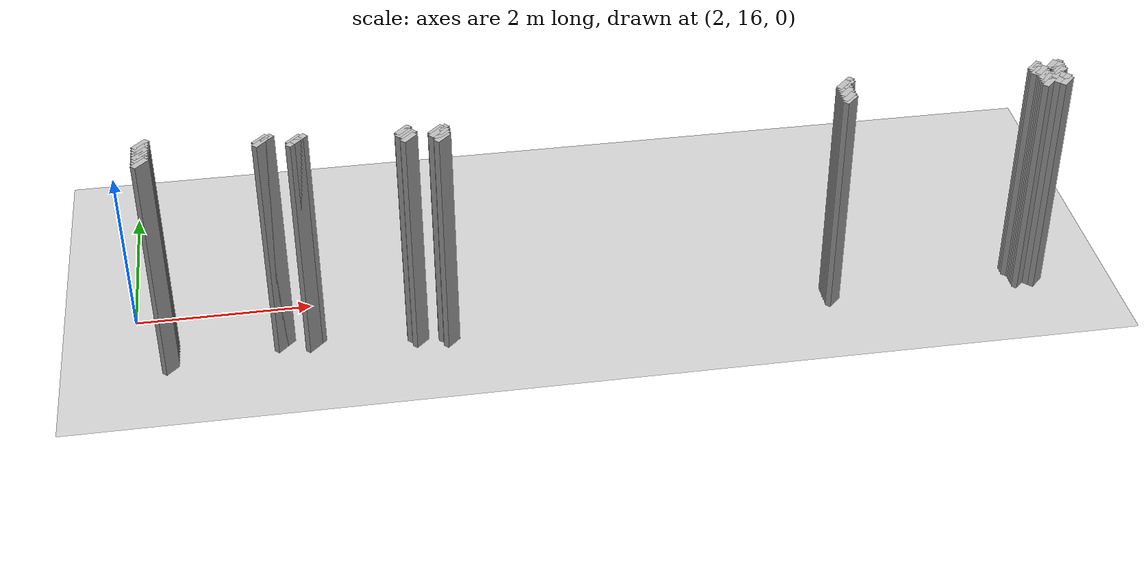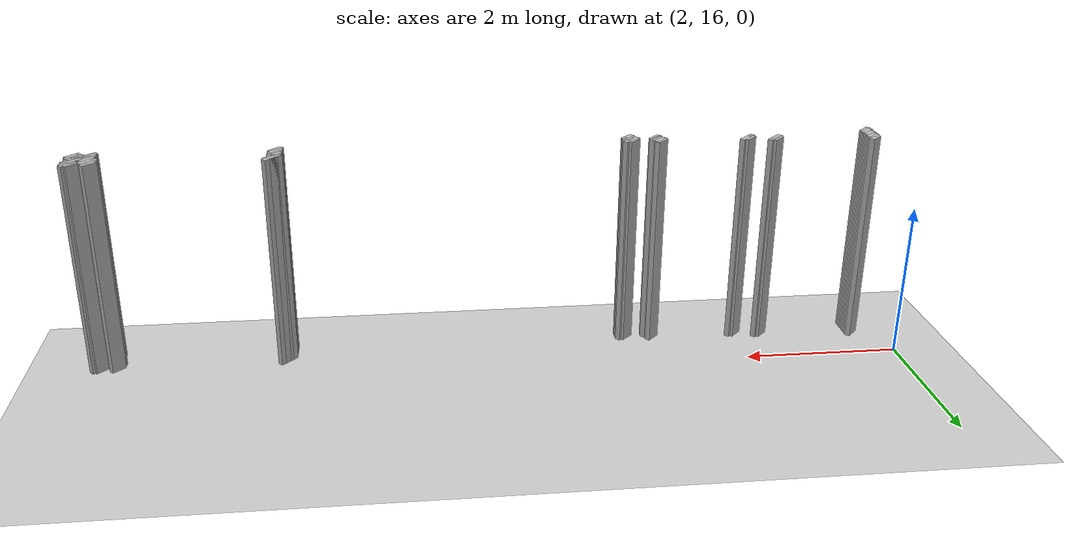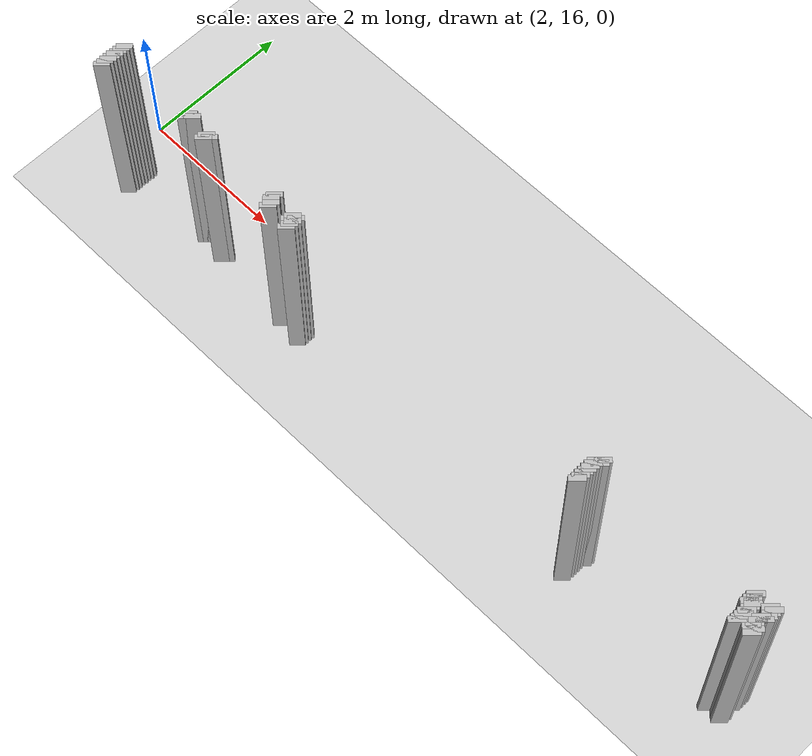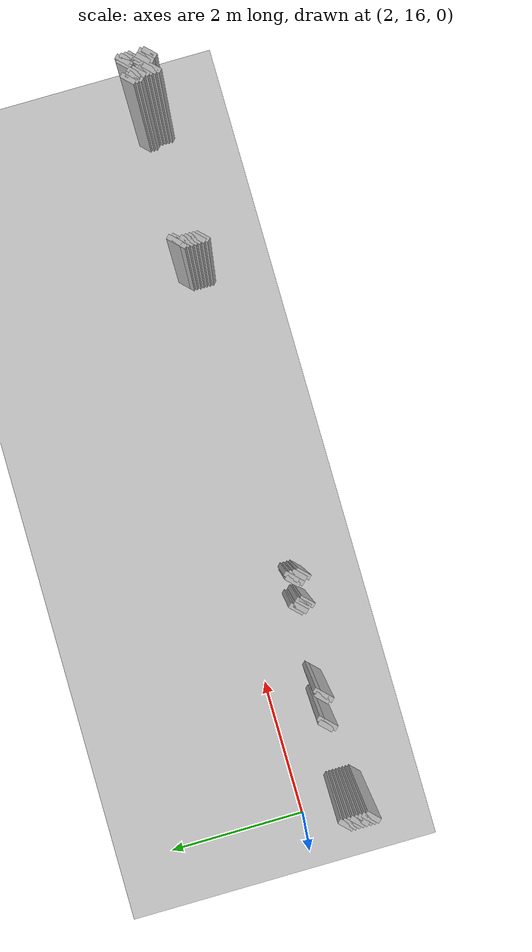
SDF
<sdf version="1.5">
 <world name="default">
  <include><uri>model://ground_plane</uri></include>
  <include><uri>model://sun</uri></include>
  <model name="grey_wall_425">
   <static>1</static>
   <link name="link">
    <pose>10.05 15.5  1.4 0 0 -0.7853981633974483</pose>
    <collision name="collision">
     <geometry><box><size>0.07071067811865576 .2  2.8</size></box></geometry>
    </collision>
    <visual name="visual">
     <cast_shadows>0</cast_shadows>
     <geometry><box><size>0.07071067811865576 .2  2.8</size></box></geometry>
    </visual>
   </link>
  </model>
  <model name="grey_wall_426">
   <static>1</static>
   <link name="link">
    <pose>12.200000000000001 15.5  1.4 0 0 -0.7853981633974483</pose>
    <collision name="collision">
     <geometry><box><size>0.07071067811865576 .2  2.8</size></box></geometry>
    </collision>
    <visual name="visual">
     <cast_shadows>0</cast_shadows>
     <geometry><box><size>0.07071067811865576 .2  2.8</size></box></geometry>
    </visual>
   </link>
  </model>
  <model name="grey_wall_427">
   <static>1</static>
   <link name="link">
    <pose>12.4 15.5  1.4 0 0 -0.7853981633974483</pose>
    <collision name="collision">
     <geometry><box><size>0.07071067811865576 .2  2.8</size></box></geometry>
    </collision>
    <visual name="visual">
     <cast_shadows>0</cast_shadows>
     <geometry><box><size>0.07071067811865576 .2  2.8</size></box></geometry>
    </visual>
   </link>
  </model>
  <model name="grey_wall_428">
   <static>1</static>
   <link name="link">
    <pose>12.450000000000001 15.5  1.4 0 0 -0.7853981633974483</pose>
    <collision name="collision">
     <geometry><box><size>0.07071067811865576 .2  2.8</size></box></geometry>
    </collision>
    <visual name="visual">
     <cast_shadows>0</cast_shadows>
     <geometry><box><size>0.07071067811865576 .2  2.8</size></box></geometry>
    </visual>
   </link>
  </model>
  <model name="grey_wall_429">
   <static>1</static>
   <link name="link">
    <pose>2.4000000000000004 15.450000000000001  1.4 0 0 -0.7853981633974572</pose>
    <collision name="collision">
     <geometry><box><size>0.07071067811865513 .2  2.8</size></box></geometry>
    </collision>
    <visual name="visual">
     <cast_shadows>0</cast_shadows>
     <geometry><box><size>0.07071067811865513 .2  2.8</size></box></geometry>
    </visual>
   </link>
  </model>
  <model name="grey_wall_430">
   <static>1</static>
   <link name="link">
    <pose>10.0 15.450000000000001  1.4 0 0 -0.7853981633974483</pose>
    <collision name="collision">
     <geometry><box><size>0.07071067811865576 .2  2.8</size></box></geometry>
    </collision>
    <visual name="visual">
     <cast_shadows>0</cast_shadows>
     <geometry><box><size>0.07071067811865576 .2  2.8</size></box></geometry>
    </visual>
   </link>
  </model>
  <model name="grey_wall_431">
   <static>1</static>
   <link name="link">
    <pose>10.05 15.450000000000001  1.4 0 0 -0.7853981633974483</pose>
    <collision name="collision">
     <geometry><box><size>0.07071067811865576 .2  2.8</size></box></geometry>
    </collision>
    <visual name="visual">
     <cast_shadows>0</cast_shadows>
     <geometry><box><size>0.07071067811865576 .2  2.8</size></box></geometry>
    </visual>
   </link>
  </model>
  <model name="grey_wall_432">
   <static>1</static>
   <link name="link">
    <pose>12.200000000000001 15.450000000000001  1.4 0 0 -0.7853981633974483</pose>
    <collision name="collision">
     <geometry><box><size>0.07071067811865576 .2  2.8</size></box></geometry>
    </collision>
    <visual name="visual">
     <cast_shadows>0</cast_shadows>
     <geometry><box><size>0.07071067811865576 .2  2.8</size></box></geometry>
    </visual>
   </link>
  </model>
  <model name="grey_wall_433">
   <static>1</static>
   <link name="link">
    <pose>12.450000000000001 15.450000000000001  1.4 0 0 -0.7853981633974483</pose>
    <collision name="collision">
     <geometry><box><size>0.07071067811865576 .2  2.8</size></box></geometry>
    </collision>
    <visual name="visual">
     <cast_shadows>0</cast_shadows>
     <geometry><box><size>0.07071067811865576 .2  2.8</size></box></geometry>
    </visual>
   </link>
  </model>
  <model name="grey_wall_434">
   <static>1</static>
   <link name="link">
    <pose>2.4000000000000004 15.4  1.4 0 0 -0.7853981633974572</pose>
    <collision name="collision">
     <geometry><box><size>0.07071067811865513 .2  2.8</size></box></geometry>
    </collision>
    <visual name="visual">
     <cast_shadows>0</cast_shadows>
     <geometry><box><size>0.07071067811865513 .2  2.8</size></box></geometry>
    </visual>
   </link>
  </model>
  <model name="grey_wall_435">
   <static>1</static>
   <link name="link">
    <pose>10.0 15.4  1.4 0 0 -0.7853981633974483</pose>
    <collision name="collision">
     <geometry><box><size>0.07071067811865576 .2  2.8</size></box></geometry>
    </collision>
    <visual name="visual">
     <cast_shadows>0</cast_shadows>
     <geometry><box><size>0.07071067811865576 .2  2.8</size></box></geometry>
    </visual>
   </link>
  </model>
  <model name="grey_wall_436">
   <static>1</static>
   <link name="link">
    <pose>12.200000000000001 15.4  1.4 0 0 -0.7853981633974483</pose>
    <collision name="collision">
     <geometry><box><size>0.07071067811865576 .2  2.8</size></box></geometry>
    </collision>
    <visual name="visual">
     <cast_shadows>0</cast_shadows>
     <geometry><box><size>0.07071067811865576 .2  2.8</size></box></geometry>
    </visual>
   </link>
  </model>
  <model name="grey_wall_437">
   <static>1</static>
   <link name="link">
    <pose>12.25 15.4  1.4 0 0 -0.7853981633974483</pose>
    <collision name="collision">
     <geometry><box><size>0.07071067811865576 .2  2.8</size></box></geometry>
    </collision>
    <visual name="visual">
     <cast_shadows>0</cast_shadows>
     <geometry><box><size>0.07071067811865576 .2  2.8</size></box></geometry>
    </visual>
   </link>
  </model>
  <model name="grey_wall_438">
   <static>1</static>
   <link name="link">
    <pose>12.450000000000001 15.4  1.4 0 0 -0.7853981633974483</pose>
    <collision name="collision">
     <geometry><box><size>0.07071067811865576 .2  2.8</size></box></geometry>
    </collision>
    <visual name="visual">
     <cast_shadows>0</cast_shadows>
     <geometry><box><size>0.07071067811865576 .2  2.8</size></box></geometry>
    </visual>
   </link>
  </model>
  <model name="grey_wall_439">
   <static>1</static>
   <link name="link">
    <pose>2.4000000000000004 15.350000000000001  1.4 0 0 -0.7853981633974572</pose>
    <collision name="collision">
     <geometry><box><size>0.07071067811865513 .2  2.8</size></box></geometry>
    </collision>
    <visual name="visual">
     <cast_shadows>0</cast_shadows>
     <geometry><box><size>0.07071067811865513 .2  2.8</size></box></geometry>
    </visual>
   </link>
  </model>
  <model name="grey_wall_440">
   <static>1</static>
   <link name="link">
    <pose>3.6500000000000004 15.350000000000001  1.4 0 0 -0.7853981633974572</pose>
    <collision name="collision">
     <geometry><box><size>0.07071067811865513 .2  2.8</size></box></geometry>
    </collision>
    <visual name="visual">
     <cast_shadows>0</cast_shadows>
     <geometry><box><size>0.07071067811865513 .2  2.8</size></box></geometry>
    </visual>
   </link>
  </model>
  <model name="grey_wall_441">
   <static>1</static>
   <link name="link">
    <pose>3.7 15.350000000000001  1.4 0 0 -0.7853981633974572</pose>
    <collision name="collision">
     <geometry><box><size>0.07071067811865513 .2  2.8</size></box></geometry>
    </collision>
    <visual name="visual">
     <cast_shadows>0</cast_shadows>
     <geometry><box><size>0.07071067811865513 .2  2.8</size></box></geometry>
    </visual>
   </link>
  </model>
  <model name="grey_wall_442">
   <static>1</static>
   <link name="link">
    <pose>10.0 15.350000000000001  1.4 0 0 -0.7853981633974483</pose>
    <collision name="collision">
     <geometry><box><size>0.07071067811865576 .2  2.8</size></box></geometry>
    </collision>
    <visual name="visual">
     <cast_shadows>0</cast_shadows>
     <geometry><box><size>0.07071067811865576 .2  2.8</size></box></geometry>
    </visual>
   </link>
  </model>
  <model name="grey_wall_443">
   <static>1</static>
   <link name="link">
    <pose>12.25 15.350000000000001  1.4 0 0 -0.7853981633974483</pose>
    <collision name="collision">
     <geometry><box><size>0.07071067811865576 .2  2.8</size></box></geometry>
    </collision>
    <visual name="visual">
     <cast_shadows>0</cast_shadows>
     <geometry><box><size>0.07071067811865576 .2  2.8</size></box></geometry>
    </visual>
   </link>
  </model>
  <model name="grey_wall_444">
   <static>1</static>
   <link name="link">
    <pose>12.4 15.350000000000001  1.4 0 0 -0.7853981633974483</pose>
    <collision name="collision">
     <geometry><box><size>0.07071067811865576 .2  2.8</size></box></geometry>
    </collision>
    <visual name="visual">
     <cast_shadows>0</cast_shadows>
     <geometry><box><size>0.07071067811865576 .2  2.8</size></box></geometry>
    </visual>
   </link>
  </model>
  <model name="grey_wall_445">
   <static>1</static>
   <link name="link">
    <pose>12.450000000000001 15.350000000000001  1.4 0 0 -0.7853981633974483</pose>
    <collision name="collision">
     <geometry><box><size>0.07071067811865576 .2  2.8</size></box></geometry>
    </collision>
    <visual name="visual">
     <cast_shadows>0</cast_shadows>
     <geometry><box><size>0.07071067811865576 .2  2.8</size></box></geometry>
    </visual>
   </link>
  </model>
  <model name="grey_wall_446">
   <static>1</static>
   <link name="link">
    <pose>2.4000000000000004 15.3  1.4 0 0 -0.7853981633974572</pose>
    <collision name="collision">
     <geometry><box><size>0.07071067811865513 .2  2.8</size></box></geometry>
    </collision>
    <visual name="visual">
     <cast_shadows>0</cast_shadows>
     <geometry><box><size>0.07071067811865513 .2  2.8</size></box></geometry>
    </visual>
   </link>
  </model>
  <model name="grey_wall_447">
   <static>1</static>
   <link name="link">
    <pose>3.6500000000000004 15.3  1.4 0 0 -0.7853981633974572</pose>
    <collision name="collision">
     <geometry><box><size>0.07071067811865513 .2  2.8</size></box></geometry>
    </collision>
    <visual name="visual">
     <cast_shadows>0</cast_shadows>
     <geometry><box><size>0.07071067811865513 .2  2.8</size></box></geometry>
    </visual>
   </link>
  </model>
  <model name="grey_wall_448">
   <static>1</static>
   <link name="link">
    <pose>4.0 15.3  1.4 0 0 -0.7853981633974527</pose>
    <collision name="collision">
     <geometry><box><size>0.07071067811865545 .2  2.8</size></box></geometry>
    </collision>
    <visual name="visual">
     <cast_shadows>0</cast_shadows>
     <geometry><box><size>0.07071067811865545 .2  2.8</size></box></geometry>
    </visual>
   </link>
  </model>
  <model name="grey_wall_449">
   <static>1</static>
   <link name="link">
    <pose>4.05 15.3  1.4 0 0 -0.7853981633974483</pose>
    <collision name="collision">
     <geometry><box><size>0.07071067811865576 .2  2.8</size></box></geometry>
    </collision>
    <visual name="visual">
     <cast_shadows>0</cast_shadows>
     <geometry><box><size>0.07071067811865576 .2  2.8</size></box></geometry>
    </visual>
   </link>
  </model>
  <model name="grey_wall_450">
   <static>1</static>
   <link name="link">
    <pose>5.15 15.3  1.4 0 0 -0.7853981633974483</pose>
    <collision name="collision">
     <geometry><box><size>0.07071067811865576 .2  2.8</size></box></geometry>
    </collision>
    <visual name="visual">
     <cast_shadows>0</cast_shadows>
     <geometry><box><size>0.07071067811865576 .2  2.8</size></box></geometry>
    </visual>
   </link>
  </model>
  <model name="grey_wall_451">
   <static>1</static>
   <link name="link">
    <pose>10.0 15.3  1.4 0 0 -0.7853981633974483</pose>
    <collision name="collision">
     <geometry><box><size>0.07071067811865576 .2  2.8</size></box></geometry>
    </collision>
    <visual name="visual">
     <cast_shadows>0</cast_shadows>
     <geometry><box><size>0.07071067811865576 .2  2.8</size></box></geometry>
    </visual>
   </link>
  </model>
  <model name="grey_wall_452">
   <static>1</static>
   <link name="link">
    <pose>12.25 15.3  1.4 0 0 -0.7853981633974483</pose>
    <collision name="collision">
     <geometry><box><size>0.07071067811865576 .2  2.8</size></box></geometry>
    </collision>
    <visual name="visual">
     <cast_shadows>0</cast_shadows>
     <geometry><box><size>0.07071067811865576 .2  2.8</size></box></geometry>
    </visual>
   </link>
  </model>
  <model name="grey_wall_453">
   <static>1</static>
   <link name="link">
    <pose>12.4 15.3  1.4 0 0 -0.7853981633974483</pose>
    <collision name="collision">
     <geometry><box><size>0.07071067811865576 .2  2.8</size></box></geometry>
    </collision>
    <visual name="visual">
     <cast_shadows>0</cast_shadows>
     <geometry><box><size>0.07071067811865576 .2  2.8</size></box></geometry>
    </visual>
   </link>
  </model>
  <model name="grey_wall_454">
   <static>1</static>
   <link name="link">
    <pose>2.4000000000000004 15.25  1.4 0 0 -0.7853981633974572</pose>
    <collision name="collision">
     <geometry><box><size>0.07071067811865513 .2  2.8</size></box></geometry>
    </collision>
    <visual name="visual">
     <cast_shadows>0</cast_shadows>
     <geometry><box><size>0.07071067811865513 .2  2.8</size></box></geometry>
    </visual>
   </link>
  </model>
  <model name="grey_wall_455">
   <static>1</static>
   <link name="link">
    <pose>4.0 15.25  1.4 0 0 -0.7853981633974527</pose>
    <collision name="collision">
     <geometry><box><size>0.07071067811865545 .2  2.8</size></box></geometry>
    </collision>
    <visual name="visual">
     <cast_shadows>0</cast_shadows>
     <geometry><box><size>0.07071067811865545 .2  2.8</size></box></geometry>
    </visual>
   </link>
  </model>
  <model name="grey_wall_456">
   <static>1</static>
   <link name="link">
    <pose>5.15 15.25  1.4 0 0 -0.7853981633974483</pose>
    <collision name="collision">
     <geometry><box><size>0.07071067811865576 .2  2.8</size></box></geometry>
    </collision>
    <visual name="visual">
     <cast_shadows>0</cast_shadows>
     <geometry><box><size>0.07071067811865576 .2  2.8</size></box></geometry>
    </visual>
   </link>
  </model>
  <model name="grey_wall_457">
   <static>1</static>
   <link name="link">
    <pose>5.5 15.25  1.4 0 0 -0.7853981633974483</pose>
    <collision name="collision">
     <geometry><box><size>0.07071067811865576 .2  2.8</size></box></geometry>
    </collision>
    <visual name="visual">
     <cast_shadows>0</cast_shadows>
     <geometry><box><size>0.07071067811865576 .2  2.8</size></box></geometry>
    </visual>
   </link>
  </model>
  <model name="grey_wall_458">
   <static>1</static>
   <link name="link">
    <pose>5.550000000000001 15.25  1.4 0 0 -0.7853981633974483</pose>
    <collision name="collision">
     <geometry><box><size>0.07071067811865576 .2  2.8</size></box></geometry>
    </collision>
    <visual name="visual">
     <cast_shadows>0</cast_shadows>
     <geometry><box><size>0.07071067811865576 .2  2.8</size></box></geometry>
    </visual>
   </link>
  </model>
  <model name="grey_wall_459">
   <static>1</static>
   <link name="link">
    <pose>10.0 15.25  1.4 0 0 -0.7853981633974483</pose>
    <collision name="collision">
     <geometry><box><size>0.07071067811865576 .2  2.8</size></box></geometry>
    </collision>
    <visual name="visual">
     <cast_shadows>0</cast_shadows>
     <geometry><box><size>0.07071067811865576 .2  2.8</size></box></geometry>
    </visual>
   </link>
  </model>
  <model name="grey_wall_460">
   <static>1</static>
   <link name="link">
    <pose>12.25 15.25  1.4 0 0 -0.7853981633974483</pose>
    <collision name="collision">
     <geometry><box><size>0.07071067811865576 .2  2.8</size></box></geometry>
    </collision>
    <visual name="visual">
     <cast_shadows>0</cast_shadows>
     <geometry><box><size>0.07071067811865576 .2  2.8</size></box></geometry>
    </visual>
   </link>
  </model>
  <model name="grey_wall_461">
   <static>1</static>
   <link name="link">
    <pose>12.4 15.25  1.4 0 0 -0.7853981633974483</pose>
    <collision name="collision">
     <geometry><box><size>0.07071067811865576 .2  2.8</size></box></geometry>
    </collision>
    <visual name="visual">
     <cast_shadows>0</cast_shadows>
     <geometry><box><size>0.07071067811865576 .2  2.8</size></box></geometry>
    </visual>
   </link>
  </model>
  <model name="grey_wall_462">
   <static>1</static>
   <link name="link">
    <pose>2.4000000000000004 15.200000000000001  1.4 0 0 -0.7853981633974572</pose>
    <collision name="collision">
     <geometry><box><size>0.07071067811865513 .2  2.8</size></box></geometry>
    </collision>
    <visual name="visual">
     <cast_shadows>0</cast_shadows>
     <geometry><box><size>0.07071067811865513 .2  2.8</size></box></geometry>
    </visual>
   </link>
  </model>
  <model name="grey_wall_463">
   <static>1</static>
   <link name="link">
    <pose>5.2 15.200000000000001  1.4 0 0 -0.7853981633974483</pose>
    <collision name="collision">
     <geometry><box><size>0.07071067811865576 .2  2.8</size></box></geometry>
    </collision>
    <visual name="visual">
     <cast_shadows>0</cast_shadows>
     <geometry><box><size>0.07071067811865576 .2  2.8</size></box></geometry>
    </visual>
   </link>
  </model>
  <model name="grey_wall_464">
   <static>1</static>
   <link name="link">
    <pose>5.5 15.200000000000001  1.4 0 0 -0.7853981633974483</pose>
    <collision name="collision">
     <geometry><box><size>0.07071067811865576 .2  2.8</size></box></geometry>
    </collision>
    <visual name="visual">
     <cast_shadows>0</cast_shadows>
     <geometry><box><size>0.07071067811865576 .2  2.8</size></box></geometry>
    </visual>
   </link>
  </model>
  <model name="grey_wall_465">
   <static>1</static>
   <link name="link">
    <pose>5.550000000000001 15.200000000000001  1.4 0 0 -0.7853981633974483</pose>
    <collision name="collision">
     <geometry><box><size>0.07071067811865576 .2  2.8</size></box></geometry>
    </collision>
    <visual name="visual">
     <cast_shadows>0</cast_shadows>
     <geometry><box><size>0.07071067811865576 .2  2.8</size></box></geometry>
    </visual>
   </link>
  </model>
  <model name="grey_wall_466">
   <static>1</static>
   <link name="link">
    <pose>10.0 15.200000000000001  1.4 0 0 -0.7853981633974483</pose>
    <collision name="collision">
     <geometry><box><size>0.07071067811865576 .2  2.8</size></box></geometry>
    </collision>
    <visual name="visual">
     <cast_shadows>0</cast_shadows>
     <geometry><box><size>0.07071067811865576 .2  2.8</size></box></geometry>
    </visual>
   </link>
  </model>
  <model name="grey_wall_467">
   <static>1</static>
   <link name="link">
    <pose>12.25 15.200000000000001  1.4 0 0 -0.7853981633974483</pose>
    <collision name="collision">
     <geometry><box><size>0.07071067811865576 .2  2.8</size></box></geometry>
    </collision>
    <visual name="visual">
     <cast_shadows>0</cast_shadows>
     <geometry><box><size>0.07071067811865576 .2  2.8</size></box></geometry>
    </visual>
   </link>
  </model>
  <model name="grey_wall_468">
   <static>1</static>
   <link name="link">
    <pose>12.4 15.200000000000001  1.4 0 0 -0.7853981633974483</pose>
    <collision name="collision">
     <geometry><box><size>0.07071067811865576 .2  2.8</size></box></geometry>
    </collision>
    <visual name="visual">
     <cast_shadows>0</cast_shadows>
     <geometry><box><size>0.07071067811865576 .2  2.8</size></box></geometry>
    </visual>
   </link>
  </model>
  <model name="grey_wall_469">
   <static>1</static>
   <link name="link">
    <pose>12.450000000000001 15.200000000000001  1.4 0 0 -0.7853981633974483</pose>
    <collision name="collision">
     <geometry><box><size>0.07071067811865576 .2  2.8</size></box></geometry>
    </collision>
    <visual name="visual">
     <cast_shadows>0</cast_shadows>
     <geometry><box><size>0.07071067811865576 .2  2.8</size></box></geometry>
    </visual>
   </link>
  </model>
  <model name="grey_wall_470">
   <static>1</static>
   <link name="link">
    <pose>2.4000000000000004 15.15  1.4 0 0 -0.7853981633974572</pose>
    <collision name="collision">
     <geometry><box><size>0.07071067811865513 .2  2.8</size></box></geometry>
    </collision>
    <visual name="visual">
     <cast_shadows>0</cast_shadows>
     <geometry><box><size>0.07071067811865513 .2  2.8</size></box></geometry>
    </visual>
   </link>
  </model>
  <model name="grey_wall_471">
   <static>1</static>
   <link name="link">
    <pose>5.2 15.15  1.4 0 0 -0.7853981633974483</pose>
    <collision name="collision">
     <geometry><box><size>0.07071067811865576 .2  2.8</size></box></geometry>
    </collision>
    <visual name="visual">
     <cast_shadows>0</cast_shadows>
     <geometry><box><size>0.07071067811865576 .2  2.8</size></box></geometry>
    </visual>
   </link>
  </model>
  <model name="grey_wall_472">
   <static>1</static>
   <link name="link">
    <pose>5.550000000000001 15.15  1.4 0 0 -0.7853981633974483</pose>
    <collision name="collision">
     <geometry><box><size>0.07071067811865576 .2  2.8</size></box></geometry>
    </collision>
    <visual name="visual">
     <cast_shadows>0</cast_shadows>
     <geometry><box><size>0.07071067811865576 .2  2.8</size></box></geometry>
    </visual>
   </link>
  </model>
  <model name="grey_wall_473">
   <static>1</static>
   <link name="link">
    <pose>10.0 15.15  1.4 0 0 -0.7853981633974483</pose>
    <collision name="collision">
     <geometry><box><size>0.07071067811865576 .2  2.8</size></box></geometry>
    </collision>
    <visual name="visual">
     <cast_shadows>0</cast_shadows>
     <geometry><box><size>0.07071067811865576 .2  2.8</size></box></geometry>
    </visual>
   </link>
  </model>
  <model name="grey_wall_474">
   <static>1</static>
   <link name="link">
    <pose>12.25 15.15  1.4 0 0 -0.7853981633974483</pose>
    <collision name="collision">
     <geometry><box><size>0.07071067811865576 .2  2.8</size></box></geometry>
    </collision>
    <visual name="visual">
     <cast_shadows>0</cast_shadows>
     <geometry><box><size>0.07071067811865576 .2  2.8</size></box></geometry>
    </visual>
   </link>
  </model>
  <model name="grey_wall_475">
   <static>1</static>
   <link name="link">
    <pose>12.450000000000001 15.15  1.4 0 0 -0.7853981633974483</pose>
    <collision name="collision">
     <geometry><box><size>0.07071067811865576 .2  2.8</size></box></geometry>
    </collision>
    <visual name="visual">
     <cast_shadows>0</cast_shadows>
     <geometry><box><size>0.07071067811865576 .2  2.8</size></box></geometry>
    </visual>
   </link>
  </model>
  <model name="grey_wall_476">
   <static>1</static>
   <link name="link">
    <pose>2.4000000000000004 15.100000000000001  1.4 0 0 -0.7853981633974572</pose>
    <collision name="collision">
     <geometry><box><size>0.07071067811865513 .2  2.8</size></box></geometry>
    </collision>
    <visual name="visual">
     <cast_shadows>0</cast_shadows>
     <geometry><box><size>0.07071067811865513 .2  2.8</size></box></geometry>
    </visual>
   </link>
  </model>
  <model name="grey_wall_477">
   <static>1</static>
   <link name="link">
    <pose>5.550000000000001 15.100000000000001  1.4 0 0 -0.7853981633974483</pose>
    <collision name="collision">
     <geometry><box><size>0.07071067811865576 .2  2.8</size></box></geometry>
    </collision>
    <visual name="visual">
     <cast_shadows>0</cast_shadows>
     <geometry><box><size>0.07071067811865576 .2  2.8</size></box></geometry>
    </visual>
   </link>
  </model>
 </world>
</sdf>
